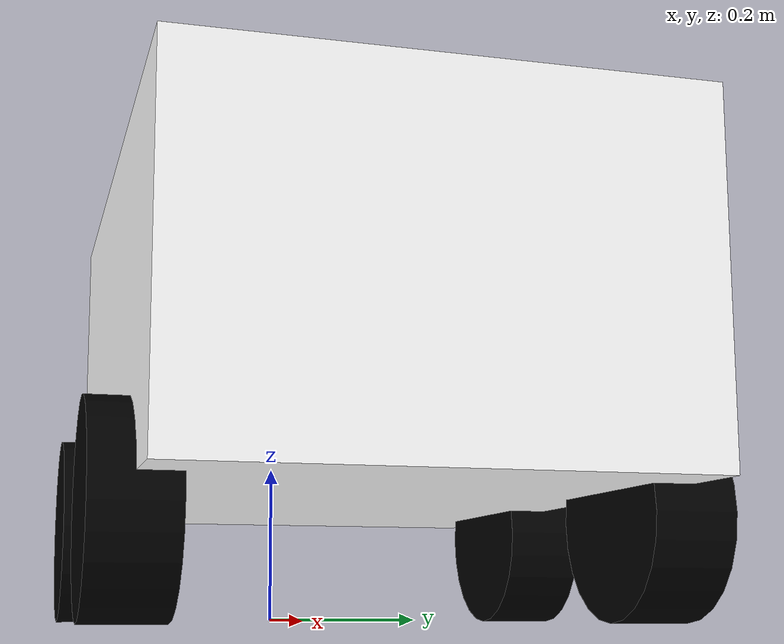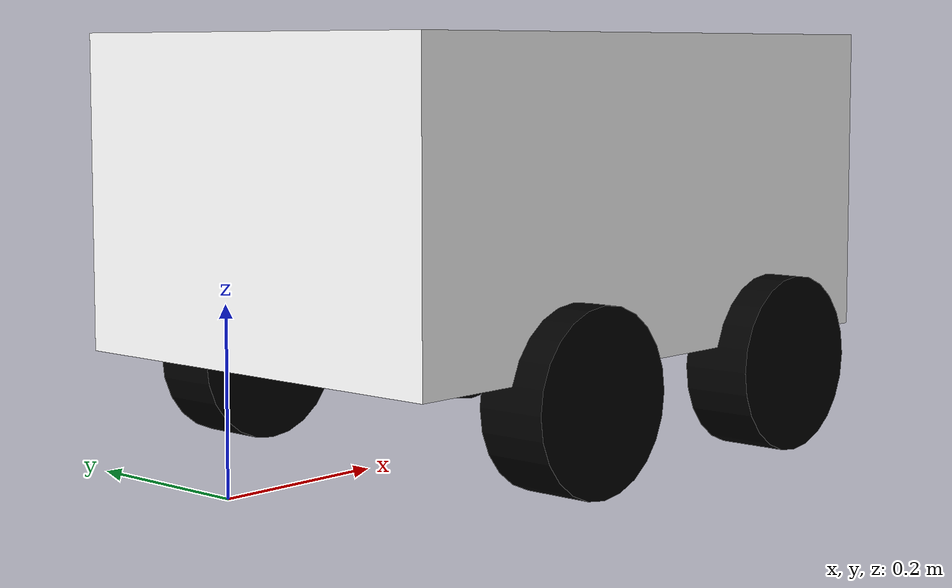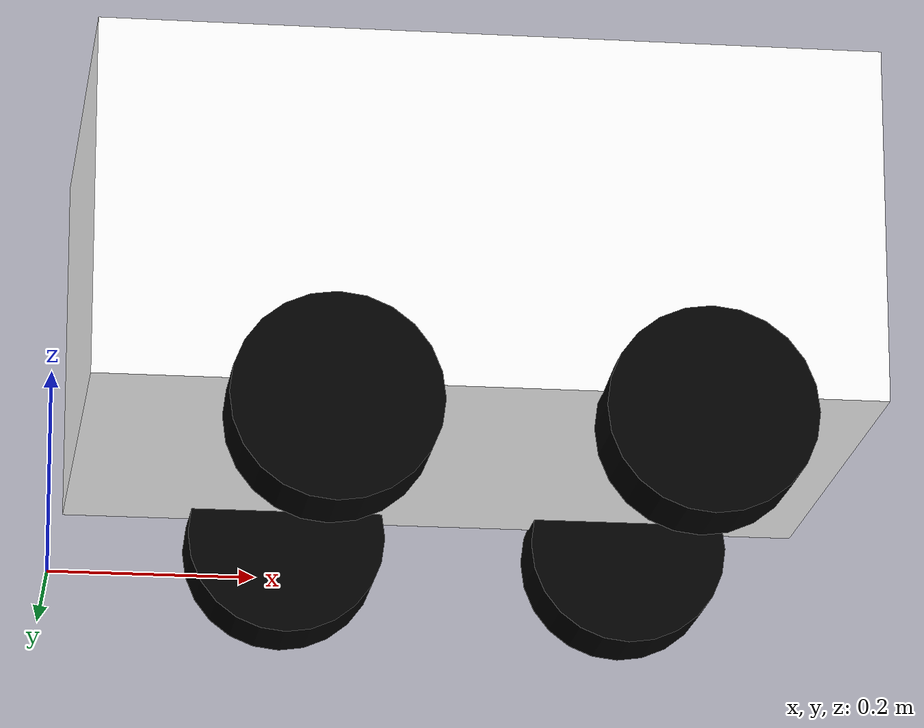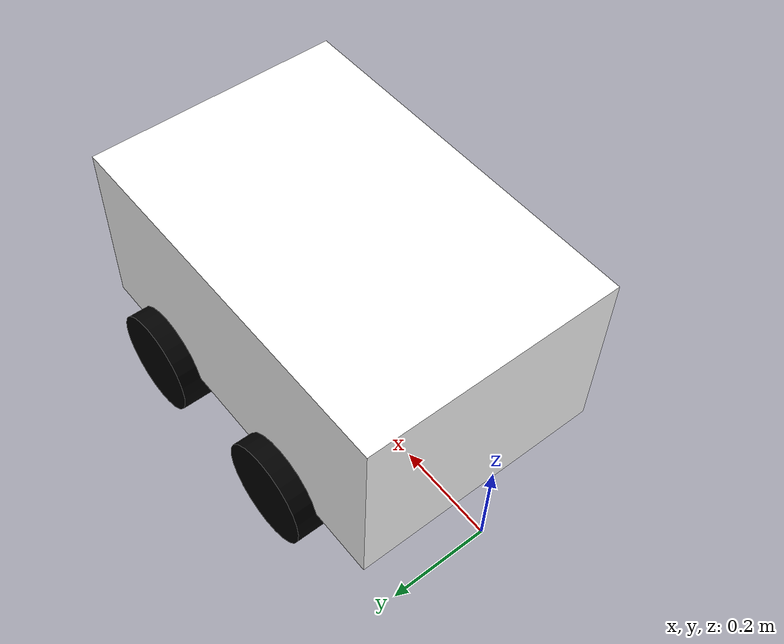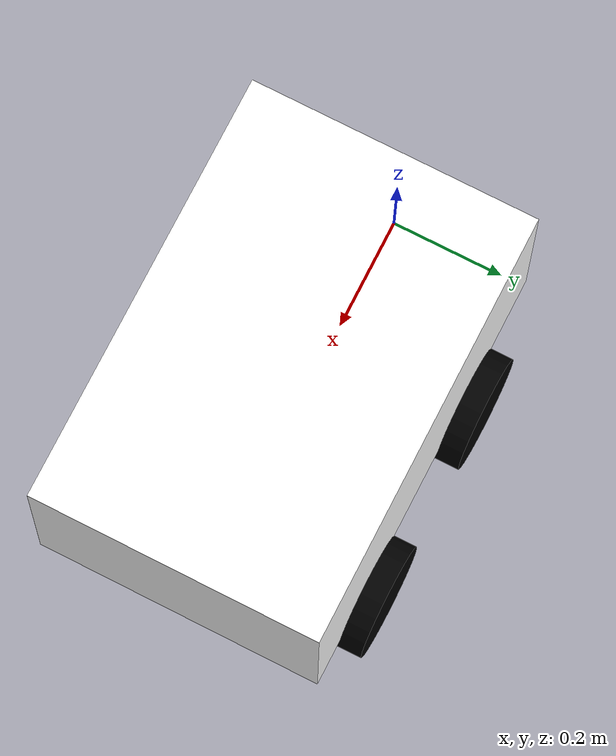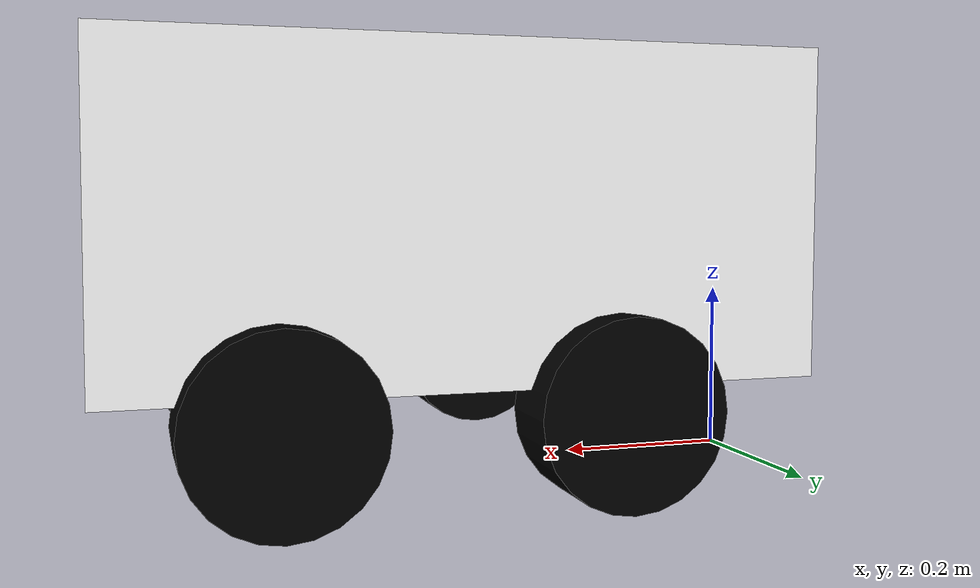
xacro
<?xml version="1.0"?>
<robot xmlns:xacro="http://www.ros.org/wiki/xacro">

<xacro:include filename="inertial_macros.xacro"/>

    <material name = "white">
        <color rgba= "1 1 1 1" />
    </material>

    <material name = "black">
        <color rgba= "0 0 0 1" />
    </material>

    <material name = "blue">
        <color rgba= ".2 .2 1 1" />
    </material>

    <link name="base_link"></link>

    <!-- BASE_FOOTPRINT LINK -->

    <!-- Assuming zed movement is negligable -->

    <joint name="base_footprint_joint" type="fixed">
        <parent link="base_link"/>
        <child link="base_footprint"/>
        <origin xyz="0 0 0" rpy="0 0 0"/>
    </joint>

    <link name="base_footprint">
    </link>

    <!-- CHASSIS LINK -->

    <joint name="chassis_joint" type="fixed">
        <parent link="base_link"/>
        <child link="chassis"/>
        <origin xyz="-0.1 0 0.1"/>
    </joint>

    <link name="chassis">
        <visual>
            <origin xyz=".5 0 .2"/>
            <geometry>
                <box size=".75 .5 0.35"/>
            </geometry>
            <material name="white"/>
        </visual>
        <collision>
            <origin xyz=".5 0 .2"/>
            <geometry>
                <box size=".75 .5 0.35"/>
            </geometry>
        </collision>
        <xacro:inertial_box mass="42" x="1" y="1" z=".5">
            <origin xyz=".5 0 .2" rpy="0 0 0"/>
        </xacro:inertial_box>
    </link>

    <gazebo reference="chassis">
        <material>Gazebo/White</material>
    </gazebo>

    <!-- LEFT DRIVE WHEEL 1 LINK -->

    <joint name="left_drive_wheel_1_joint" type="continuous">
        <parent link="base_link"/>
        <child link="left_drive_wheel_1_train"/>
        <origin xyz=".25 -.25 0.1" rpy="-${pi/2} 0 0"/>
        <axis xyz="0 0 1"/>
    </joint>

    <link name="left_drive_wheel_1_train">
        <visual>
            <geometry>
                <cylinder radius=".1" length=".08"/>
            </geometry>
            <material name="black"/>
        </visual>
        <collision>
            <geometry>
                <cylinder radius=".1" length=".08"/>
            </geometry>
        </collision>
        <xacro:inertial_cylinder mass="3" length=".08" radius=".1">
            <origin xyz="0 0 0" rpy="0 0 0"/>
        </xacro:inertial_cylinder>
    </link>

    <gazebo reference="left_drive_wheel_1_train">
        <material>Gazebo/Black</material>
    </gazebo>

    <!-- LEFT DRIVE WHEEL 3 LINK -->

    <joint name="left_drive_wheel_3_joint" type="fixed">
        <parent link="base_link"/>
        <child link="left_drive_wheel_3_train"/>
        <origin xyz=".6 -.25 0.1" rpy="-${pi/2} 0 0"/>
        <axis xyz="0 0 1"/>
    </joint>

    <link name="left_drive_wheel_3_train">
        <visual>
            <geometry>
                <cylinder radius=".1" length=".08"/>
            </geometry>
            <material name="black"/>
        </visual>
        <collision>
            <geometry>
                <cylinder radius=".1" length=".08"/>
            </geometry>
        </collision>
        <xacro:inertial_cylinder mass="3" length=".08" radius=".1">
            <origin xyz="0 0 0" rpy="0 0 0"/>
        </xacro:inertial_cylinder>
    </link>

    <gazebo reference="left_drive_wheel_3_train">
        <material>Gazebo/Black</material>
        <mu1 value="0.001"/>
        <mu2 value="0.001"/>
    </gazebo>

    <!-- RIGHT DRIVE WHEEL 1 LINK -->

    <joint name="right_drive_wheel_1_joint" type="continuous">
        <parent link="base_link"/>
        <child link="right_drive_wheel_1_train"/>
        <origin xyz=".25 .25 0.1" rpy="${pi/2} 0 0"/>
        <axis xyz="0 0 -1"/>
    </joint>

    <link name="right_drive_wheel_1_train">
        <visual>
            <geometry>
                <cylinder radius=".1" length=".08"/>
            </geometry>
            <material name="black"/>
        </visual>
        <collision>
            <geometry>
                <cylinder radius=".1" length=".08"/>
            </geometry>
        </collision>
        <xacro:inertial_cylinder mass="3" length=".08" radius=".1">
            <origin xyz="0 0 0" rpy="0 0 0"/>
        </xacro:inertial_cylinder>
    </link>

    <gazebo reference="right_drive_wheel_1_train">
        <material>Gazebo/Black</material>
    </gazebo>

    <!-- RIGHT DRIVE WHEEL 3 LINK -->

    <joint name="right_drive_wheel_3_joint" type="fixed">
        <parent link="base_link"/>
        <child link="right_drive_wheel_3_train"/>
        <origin xyz=".6 .25 0.1" rpy="${pi/2} 0 0"/>
        <axis xyz="0 0 -1"/>
    </joint>

    <link name="right_drive_wheel_3_train">
        <visual>
            <geometry>
                <cylinder radius=".1" length=".08"/>
            </geometry>
            <material name="black"/>
        </visual>
        <collision>
            <geometry>
                <cylinder radius=".1" length=".08"/>
            </geometry>
        </collision>
        <xacro:inertial_cylinder mass="3" length=".08" radius=".1">
            <origin xyz="0 0 0" rpy="0 0 0"/>
        </xacro:inertial_cylinder>
    </link>

    <gazebo reference="right_drive_wheel_3_train">
        <material>Gazebo/Black</material>
        <mu1 value="0.001"/>
        <mu2 value="0.001"/>
    </gazebo>

</robot>
